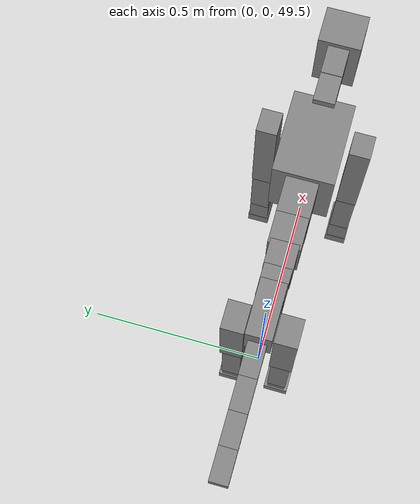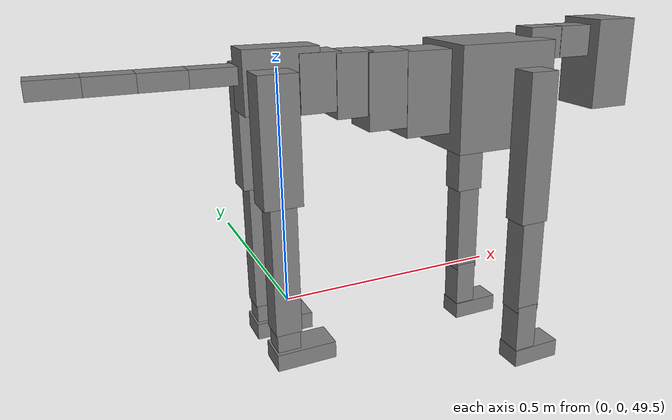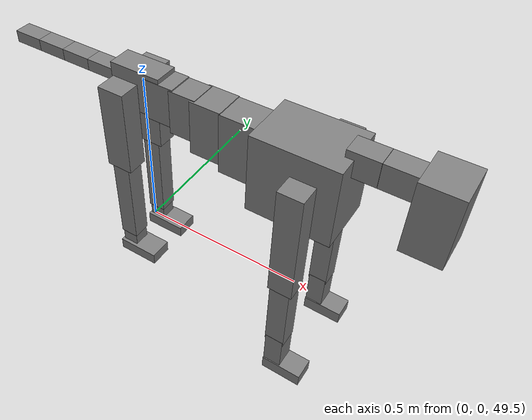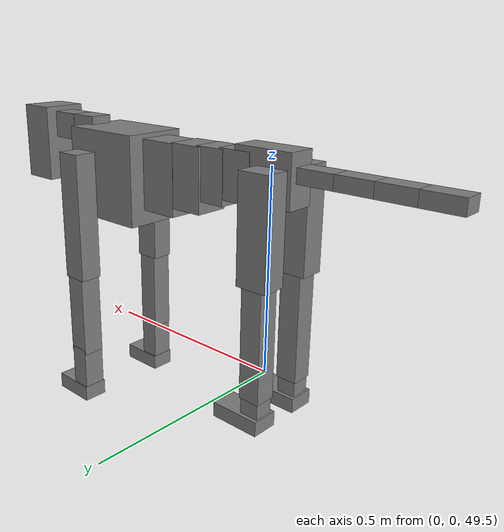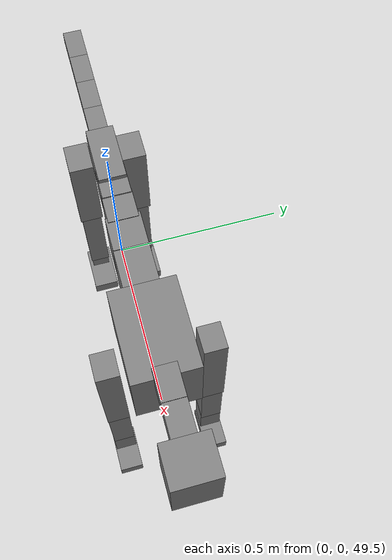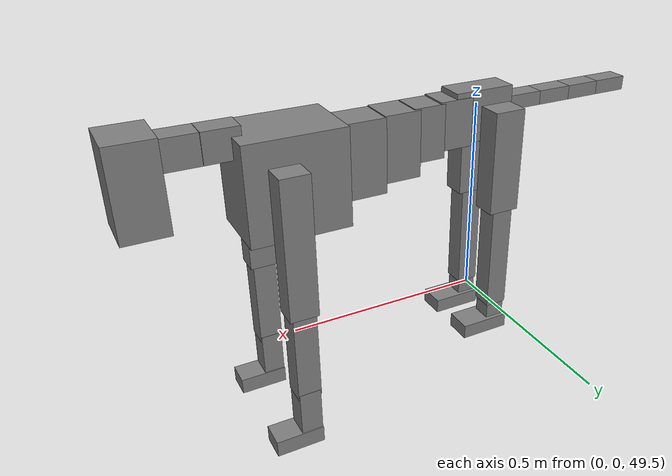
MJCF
<mujoco model="dog">

    <default>
        <joint armature="0.02" stiffness="1" damping="0.2" limited="true"/>
        <geom condim="3" friction="1 0.05 0.05" margin="0.01"/>
        <motor ctrllimited="true" ctrlrange="-1.0 1.0" forcelimited="true" gear="50"/>
    </default>

    <compiler inertiafromgeom="true" angle="radian"/>

    <option timestep="0.016" iterations="50" tolerance="1e-10" solver="Newton" jacobian="dense" cone="pyramidal"/>

    <size nconmax="20000" njmax="60000" nstack="5000000"/>
    <visual>
        <map force="0.1" zfar="30"/>
        <rgba haze="0.15 0.25 0.35 1"/>
        <quality shadowsize="2048"/>
        <global offwidth="800" offheight="800"/>
    </visual>

    <asset>
        <texture type="skybox" builtin="gradient" rgb1="0.3 0.5 0.7" rgb2="0 0 0" width="512" height="512"/>
        <texture name="texplane" type="2d" builtin="checker" rgb1=".2 .3 .4" rgb2=".1 0.15 0.2" width="512" height="512"
                 mark="cross" markrgb=".8 .8 .8"/>
        <texture name="texgeom" type="cube" builtin="flat" mark="cross" width="127" height="1278" rgb1="0.8 0.6 0.4"
                 rgb2="0.8 0.6 0.4" markrgb="1 1 1" random="0.01"/>

        <material name="matplane" reflectance="0.3" texture="texplane" texrepeat="1 1" texuniform="true"/>
        <material name="matgeom" texture="texgeom" texuniform="true" rgba="0.8 0.6 .4 1"/>
    </asset>

    <worldbody>
        <geom name="floor" pos="0 0 0" size="0 0 .25" type="plane" material="matplane" condim="3"/>

        <light directional="false" diffuse=".2 .2 .2" specular="0 0 0" pos="0 0 5" dir="0 0 -1" castshadow="false"/>
        <light mode="targetbodycom" target="torso" directional="false" diffuse=".8 .8 .8" specular="0.3 0.3 0.3"
               pos="0 0 4.0" dir="0 0 -1"/>

        <body name="root" pos="0 0 50">
            <freejoint name="root_1"/>
            <geom type="box" pos="0 0 -0.02" size="0.0774  0.0358  0.063" density="2030"/>

            <body name="spine1" pos="0.054 0 0">
                <joint name="spine1_y" axis="0 1 0" range="0 0.7" limited="true"/>
                <geom type="box" pos="0.02375 0 -0.03" size="0.04375  0.0375  0.05985" density="2030"/>

                <body name="spine2" pos="0.0612 0 0">
                    <joint name="spine2_y" axis="0 1 0" range="-0.15 0.15" limited="true"/>
                    <geom type="box" pos="0.03555  0  -0.04" size="0.04055  0.039  0.06615" density="2030"/>

                    <body name="spine3" pos="0.0730 0 0">
                        <joint name="spine3_y" axis="0 1 0" range="-0.15 0.15" limited="true"/>
                        <geom type="box" pos="0.03555  0  -0.057" size="0.04555  0.0445  0.081" density="2030"/>

                        <body name="spine4" pos="0.0780 0 0">
                            <joint name="spine4_y" axis="0 1 0" range="-0.15 0.15" limited="true"/>
                            <geom type="box" pos="0.05265  0  -0.07" size="0.05265  0.045  0.09135" density="2030"/>

                            <body name="torso" pos="0.1082 0 0">
                                <joint name="torso_y" axis="0 1 0" range="-0.15 0.15" limited="true"/>
                                <geom type="box" pos="0.11925  0  -0.085" size="0.11925  0.085  0.11745"
                                      density="2030"/>

                                <body name="neck1" pos="0.2160  0   0.0180">
                                    <joint name="neck1_y" axis="0 1 0" range="-1.2  -1" limited="true"/>
                                    <geom type="box" pos="0.0423  0  0" size="0.0423  0.03  0.036" density="2325"/>

                                    <body name="neck2" pos="0.0853  0  0">
                                        <joint name="neck2_y" axis="0 1 0" range="0.1  0" limited="true"/>
                                        <geom type="box" pos="0.0423  0  0" size="0.0423  0.03  0.036" density="2325"/>

                                        <body name="head" pos="0.0853  0  0">
                                            <joint name="head_y" axis="0 1 0" range="-0.3  -0.2" limited="true"/>
                                            <geom type="box" pos="0.0531  0  -0.055" size="0.0531  0.06  0.1044"
                                                  density="4030"/>

                                        </body>
                                    </body>
                                </body>

                                <body name="front_shoulder" pos="0.156  0   -0.0480">
                                    <joint name="front_shoulder_y" axis="0 1 0" range="-1 1.5" limited="true"/>
                                    <geom type="box" pos="0 0.13 -0.1430" size="0.0346  0.0296  0.1697" density="1158"/>
                                    <geom type="box" pos="0 -0.13 -0.1430" size="0.0346  0.0296  0.1697"
                                          density="1158"/>

                                    <body name="front_elbow" pos="0  0  -0.2860">
                                        <joint name="front_elbow_y" axis="0 1 0" range="-2 0" limited="true"/>
                                        <geom type="box" pos="0 0.13 -0.1232" size="0.0283  0.0289  0.1232"
                                              density="1081"/>
                                        <geom type="box" pos="0 -0.13 -0.1232" size="0.0283  0.0289  0.1232"
                                              density="1081"/>

                                        <body name="front_wrist" pos="0  0  -0.2465">
                                            <joint name="front_wrist_y" axis="0 1 0" range="-0.2 0" limited="true"/>
                                            <geom type="box" pos="0 0.13 -0.0569" size="0.0263  0.0293  0.0701"
                                                  density="1664"/>
                                            <geom type="box" pos="0 -0.13 -0.0569" size="0.0263  0.0293  0.0701"
                                                  density="1664"/>

                                            <body name="front_finger_end" pos="0  0  -0.1138">
                                                <joint name="front_finger_y" axis="0 1 0" range="-0.4 1"
                                                       limited="true"/>
                                                <geom type="box" pos="0.0324  0.13  -0.0058"
                                                      size="0.0594  0.0324  0.0208" density="1515"/>
                                                <geom type="box" pos="0.0324  -0.13  -0.0058"
                                                      size="0.0594  0.0324  0.0208" density="1515"/>

                                            </body>

                                        </body>
                                    </body>
                                </body>

                            </body>
                        </body>
                    </body>
                </body>
            </body>

            <body name="back_hip" pos="-0.03 0 -0.018">
                <joint name="back_hip_y" axis="0 1 0" range="-1.5 0.3" limited="true"/>
                <geom type="box" pos="0 0.07 -0.1067" size="0.0399  0.0313  0.1295" density="1154"/>
                <geom type="box" pos="0 -0.07 -0.1067" size="0.0399  0.0313  0.1295" density="1154"/>

                <body name="back_knee" pos="0  0  -0.2133">
                    <joint name="back_knee_y" axis="0 1 0" range="0 2.8" limited="true"/>
                    <geom type="box" pos="0 0.07 -0.1402" size="0.0274  0.0270  0.1557" density="1227"/>
                    <geom type="box" pos="0 -0.07 -0.1402" size="0.0274  0.0270  0.1557" density="1227"/>

                    <body name="back_ankle" pos="0  0  -0.2803">
                        <joint name="back_ankle_y" axis="0 1 0" range="-2.2 0" limited="true"/>
                        <geom type="box" pos="0 0.07 -0.0350" size="0.0245  0.0245  0.0462" density="1284"/>
                        <geom type="box" pos="0 -0.07 -0.0350" size="0.0245  0.0245  0.0462" density="1284"/>

                        <body name="back_toe_end" pos="0  0  -0.0700">
                            <joint name="back_toe_y" axis="0 1 0" range="-0.4 1" limited="true"/>
                            <geom type="box" pos="0.0348  0.07  -0.0033" size="0.0637  0.0348  0.0183" density="1515"/>
                            <geom type="box" pos="0.0348  -0.07  -0.0033" size="0.0637  0.0348  0.0183" density="1515"/>

                        </body>
                    </body>
                </body>
            </body>

            <body name="tail1" pos="-0.074 0 -0.006">
                <joint name="tail1_y" axis="0 1 0" range="-0.2 0.2" limited="true"/>
                <geom type="box" pos="-0.0536  0  0" size="0.045  0.025  0.0175" density="1587"/>

                <body name="tail2" pos="-0.09 0 0">
                    <joint name="tail2_y" axis="0 1 0" range="-0.2 0.2" limited="true"/>
                    <geom type="box" pos="-0.0536  0  0" size="0.045  0.025  0.0175" density="1587"/>

                    <body name="tail3" pos="-0.09 0 0">
                        <joint name="tail3_y" axis="0 1 0" range="-0.2 0.2" limited="true"/>
                        <geom type="box" pos="-0.0536  0  0" size="0.045  0.025  0.0175" density="1587"/>

                        <body name="tail4" pos="-0.09 0 0">
                            <joint name="tail4_y" axis="0 1 0" range="-0.2 0.2" limited="true"/>
                            <geom type="box" pos="-0.0536  0  0" size="0.045  0.025  0.0175" density="1587"/>

                        </body>
                    </body>
                </body>
            </body>
        </body>
    </worldbody>

    <actuator>
        <motor joint="spine1_y" forcerange="-150 150     "/>
        <motor joint="spine2_y" forcerange="-150 150     "/>
        <motor joint="spine3_y" forcerange="-150 150     "/>
        <motor joint="spine4_y" forcerange="-150 150     "/>
        <motor joint="torso_y" forcerange="-150 150     "/>
        <motor joint="neck1_y" forcerange="-100 100       "/>
        <motor joint="neck2_y" forcerange="-100 100       "/>
        <motor joint="head_y" forcerange="-150 150       "/>
        <motor joint="front_shoulder_y" forcerange="-127.73 169.32"/>
        <motor joint="front_elbow_y" forcerange="-193.33 117.00"/>
        <motor joint="front_wrist_y" forcerange="-128.03 106.01"/>
        <motor joint="front_finger_y" forcerange="-61.09 71.58"/>
        <motor joint="back_hip_y" forcerange="-227.87 389.75"/>
        <motor joint="back_knee_y" forcerange="-206.50 385.84"/>
        <motor joint="back_angle_y" forcerange="-196.31 95.94"/>
        <motor joint="back_toe_y" forcerange="-80.63 117.49"/>
        <motor joint="tail1_y" forcerange="-50 50     "/>
        <motor joint="tail2_y" forcerange="-50 50     "/>
        <motor joint="tail3_y" forcerange="-50 50     "/>
        <motor joint="tail4_y" forcerange="-50 50     "/>
    </actuator>
</mujoco>
